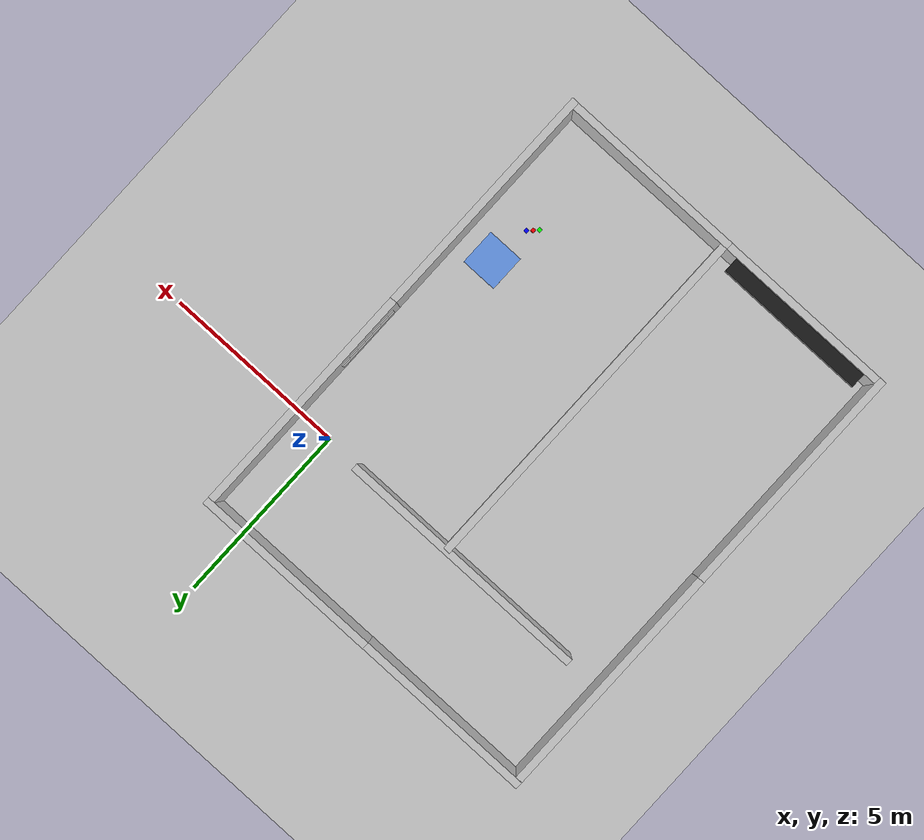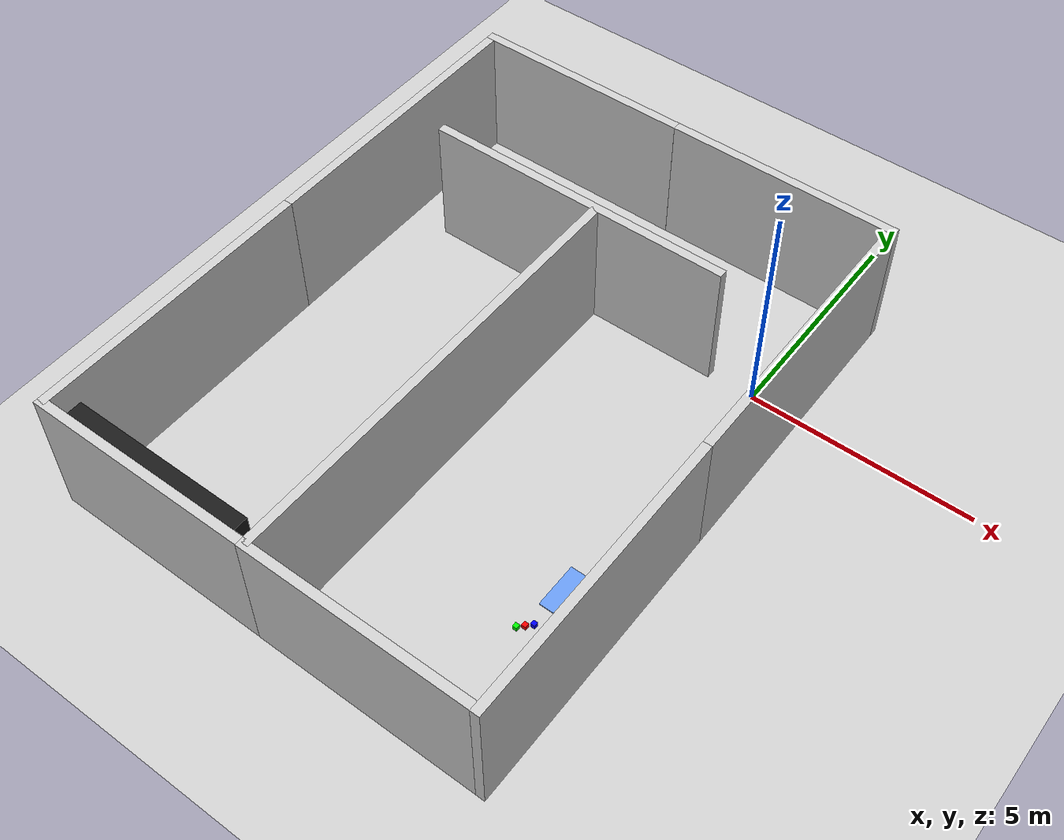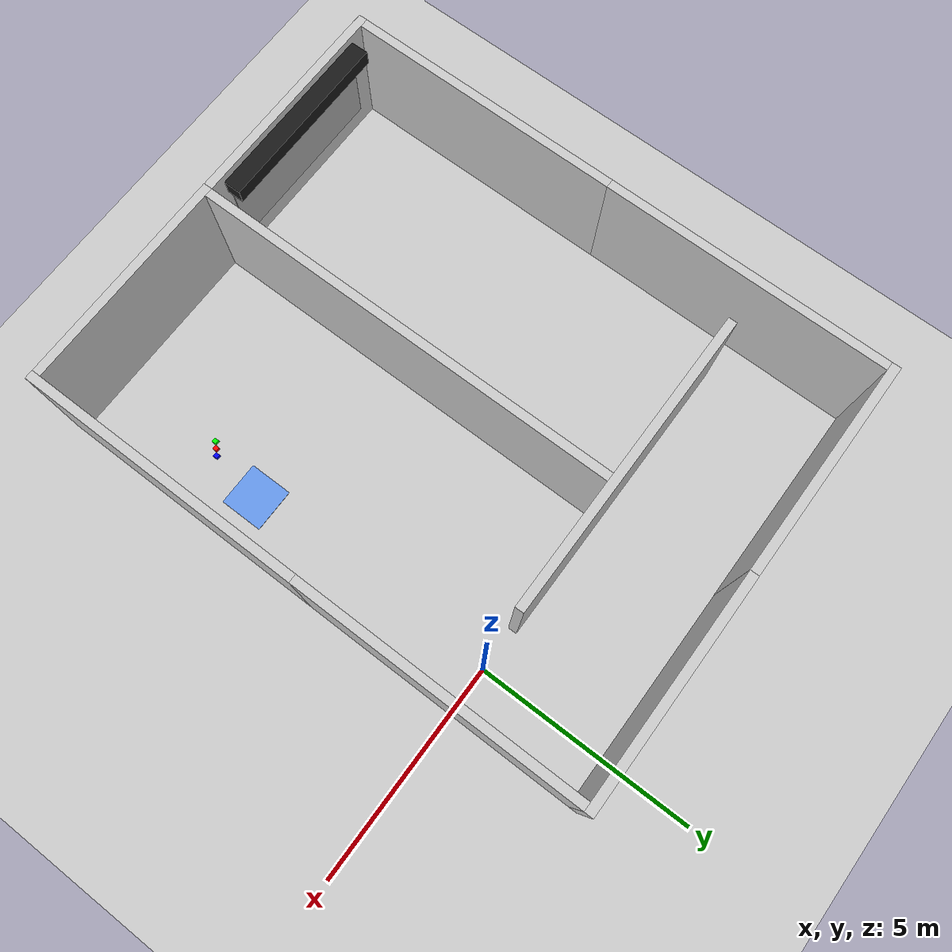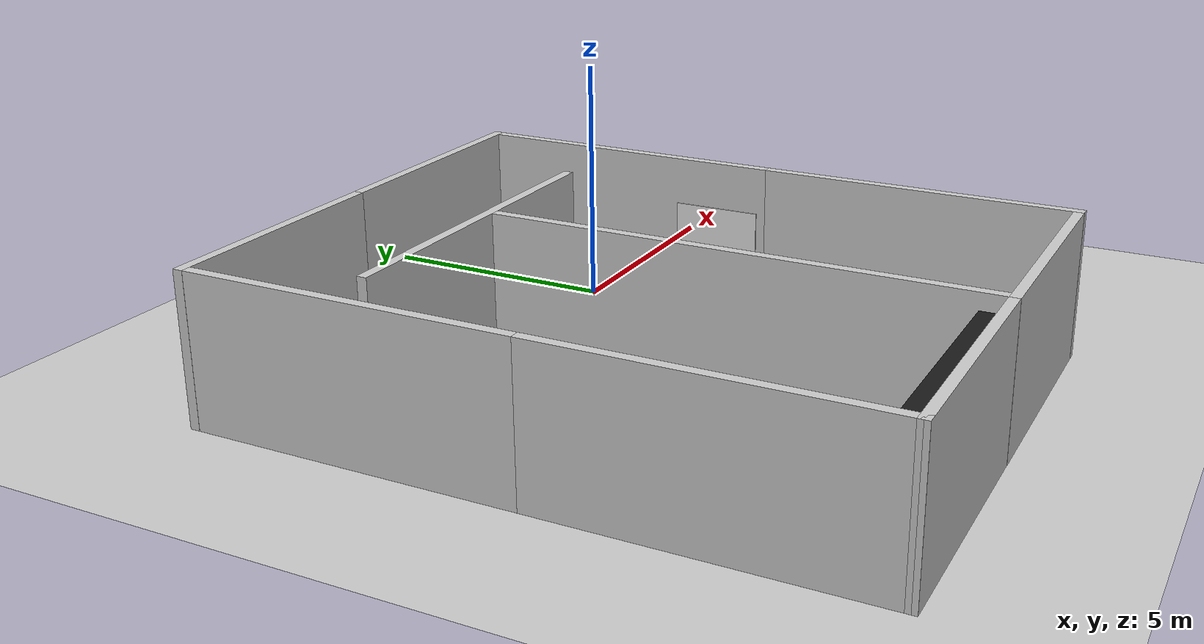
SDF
<sdf version="1.8">
 <world name="social_cost_map_world">
  <physics name="1ms" type="ignored">
   <max_step_size>0.001</max_step_size>
   <real_time_factor>1.0</real_time_factor>
  </physics>
  <scene>
   <ambient>1 1 1 1</ambient>
   <background>0.3 0.7 0.9 1</background>
   <shadows>0</shadows>
   <grid>1</grid>
  </scene>
  <light type="directional" name="sun">
   <cast_shadows>false</cast_shadows>
   <pose>0 0 10 0 0 0</pose>
   <diffuse>0.8 0.8 0.8 1</diffuse>
   <specular>0.2 0.2 0.2 1</specular>
   <attenuation>
    <range>1000</range>
    <constant>0.9</constant>
    <linear>0.01</linear>
    <quadratic>0.001</quadratic>
   </attenuation>
   <direction>-0.5 0.1 -0.9</direction>
  </light>
  <model name="ground_plane">
   <static>true</static>
   <link name="link">
    <collision name="collision">
     <geometry><plane><normal>0 0 1</normal><size>100 100</size></plane></geometry>
     <surface><friction><ode><mu>100</mu><mu2>50</mu2></ode></friction></surface>
    </collision>
    <visual name="visual">
     <cast_shadows>false</cast_shadows>
     <geometry><plane><normal>0 0 1</normal><size>100 100</size></plane></geometry>
     <material>
      <ambient>0.8 0.8 0.8 1</ambient>
      <diffuse>0.8 0.8 0.8 1</diffuse>
      <specular>0.8 0.8 0.8 1</specular>
     </material>
    </visual>
   </link>
  </model>
  <model name="Wall_Top1">
   <link name="link">
    <visual name="visual">
     <geometry><box><size>0.2 6.5 3</size></box></geometry>
     <material>
      <pbr><metal><albedo_map>model://materials/bricks.png</albedo_map><roughness>0.9</roughness></metal></pbr>
      <ambient>0.8 0.8 0.8 1</ambient>
      <diffuse>0.8 0.8 0.8 1</diffuse>
      <specular>0.8 0.8 0.8 1</specular>
     </material>
    </visual>
    <collision name="collision"><geometry><box><size>0.2 6.5 3</size></box></geometry></collision>
   </link>
   <static>1</static>
   <pose>1 -0.35 1.5 0 -0 0</pose>
  </model>
  <model name="Wall_Top2">
   <link name="link">
    <visual name="visual">
     <geometry><box><size>0.2 6.5 3</size></box></geometry>
     <material>
      <pbr><metal><albedo_map>model://materials/bricks.png</albedo_map><roughness>0.9</roughness></metal></pbr>
      <ambient>0.8 0.8 0.8 1</ambient>
      <diffuse>0.8 0.8 0.8 1</diffuse>
      <specular>0.8 0.8 0.8 1</specular>
     </material>
    </visual>
    <collision name="collision"><geometry><box><size>0.2 6.5 3</size></box></geometry></collision>
   </link>
   <static>1</static>
   <pose>1 -6.85 1.5 0 -0 0</pose>
  </model>
  <model name="Wall_Bottom1">
   <link name="link">
    <visual name="visual">
     <geometry><box><size>0.2 6.5 3</size></box></geometry>
     <material>
      <pbr><metal><albedo_map>model://materials/bricks.png</albedo_map><roughness>0.9</roughness></metal></pbr>
      <ambient>0.8 0.8 0.8 1</ambient>
      <diffuse>0.8 0.8 0.8 1</diffuse>
      <specular>0.8 0.8 0.8 1</specular>
     </material>
    </visual>
    <collision name="collision"><geometry><box><size>0.2 6.5 3</size></box></geometry></collision>
   </link>
   <static>1</static>
   <pose>-9 -0.35 1.5 0 -0 0</pose>
  </model>
  <model name="Wall_Bottom2">
   <link name="link">
    <visual name="visual">
     <geometry><box><size>0.2 6.5 3</size></box></geometry>
     <material>
      <pbr><metal><albedo_map>model://materials/bricks.png</albedo_map><roughness>0.9</roughness></metal></pbr>
      <ambient>0.8 0.8 0.8 1</ambient>
      <diffuse>0.8 0.8 0.8 1</diffuse>
      <specular>0.8 0.8 0.8 1</specular>
     </material>
    </visual>
    <collision name="collision"><geometry><box><size>0.2 6.5 3</size></box></geometry></collision>
   </link>
   <static>1</static>
   <pose>-9 -6.85 1.5 0 -0 0</pose>
  </model>
  <model name="Wall_Left1">
   <link name="link">
    <visual name="visual">
     <geometry><box><size>0.2 5.2 3</size></box></geometry>
     <material>
      <pbr><metal><albedo_map>model://materials/bricks.png</albedo_map><roughness>0.9</roughness></metal></pbr>
      <ambient>0.8 0.8 0.8 1</ambient>
      <diffuse>0.8 0.8 0.8 1</diffuse>
      <specular>0.8 0.8 0.8 1</specular>
     </material>
    </visual>
    <collision name="collision"><geometry><box><size>0.2 5 3</size></box></geometry></collision>
   </link>
   <static>1</static>
   <pose>-1.5 3 1.5 0 -0 1.57</pose>
  </model>
  <model name="Wall_Left2">
   <link name="link">
    <visual name="visual">
     <geometry><box><size>0.2 5 3</size></box></geometry>
     <material>
      <pbr><metal><albedo_map>model://materials/bricks.png</albedo_map><roughness>0.9</roughness></metal></pbr>
      <ambient>0.8 0.8 0.8 1</ambient>
      <diffuse>0.8 0.8 0.8 1</diffuse>
      <specular>0.8 0.8 0.8 1</specular>
     </material>
    </visual>
    <collision name="collision"><geometry><box><size>0.2 5 3</size></box></geometry></collision>
   </link>
   <static>1</static>
   <pose>-6.6 3 1.5 0 -0 1.57</pose>
  </model>
  <model name="Wall_Right1">
   <link name="link">
    <visual name="visual">
     <geometry><box><size>0.2 5 3</size></box></geometry>
     <material>
      <diffuse>0.8 0.8 0.8 1</diffuse>
      <specular>0.8 0.8 0.8 1</specular>
      <pbr><metal><albedo_map>model://materials/bricks.png</albedo_map><roughness>0.9</roughness></metal></pbr>
     </material>
    </visual>
    <collision name="collision"><geometry><box><size>0.2 5 3</size></box></geometry></collision>
   </link>
   <static>1</static>
   <pose>-1.6 -10 1.5 0 -0 -1.57</pose>
  </model>
  <model name="Wall_Right2">
   <link name="link">
    <visual name="visual">
     <geometry><box><size>0.2 5 3</size></box></geometry>
     <material>
      <diffuse>0.8 0.8 0.8 1</diffuse>
      <specular>0.8 0.8 0.8 1</specular>
      <pbr><metal><albedo_map>model://materials/bricks.png</albedo_map><roughness>0.9</roughness></metal></pbr>
     </material>
    </visual>
    <collision name="collision"><geometry><box><size>0.2 5 3</size></box></geometry></collision>
   </link>
   <static>1</static>
   <pose>-6.6 -10 1.5 0 -0 -1.57</pose>
  </model>
  <model name="Wall_Garage_1">
   <link name="link">
    <visual name="visual">
     <geometry><box><size>0.2 10 3</size></box></geometry>
     <material>
      <pbr><metal><albedo_map>model://materials/bricks.png</albedo_map><roughness>0.9</roughness></metal></pbr>
      <ambient>0.8 0.8 0.8 1</ambient>
      <diffuse>0.8 0.8 0.8 1</diffuse>
      <specular>0.8 0.8 0.8 1</specular>
     </material>
    </visual>
    <collision name="collision"><geometry><box><size>0.2 10 3</size></box></geometry></collision>
   </link>
   <static>1</static>
   <pose>-4 -5 1.5 0 -0 0</pose>
  </model>
  <model name="Wall_Garage_Left">
   <link name="link">
    <visual name="visual">
     <geometry><box><size>0.2 7 3</size></box></geometry>
     <material>
      <pbr><metal><albedo_map>model://materials/bricks.png</albedo_map><roughness>0.9</roughness></metal></pbr>
      <ambient>0.8 0.8 0.8 1</ambient>
      <diffuse>0.8 0.8 0.8 1</diffuse>
      <specular>0.8 0.8 0.8 1</specular>
     </material>
    </visual>
    <collision name="collision"><geometry><box><size>0.2 7 3</size></box></geometry></collision>
   </link>
   <static>1</static>
   <pose>-4.5 0 1.5 0 -0 -1.57</pose>
  </model>
  <include><uri>model://garage_door</uri><name>Garage_Door</name><pose>-6.5 -9.9 1.5 0 0 1.57</pose></include>
  <include>
   <uri>model://tv_65in_emissive</uri>
   <name>tv_65in_emissive</name>
   <pose>0.9 -2.5 1.5 0 0 0</pose>
  </include>
  <include><uri>model://landing_sign</uri><name>landing_sign</name><pose>0 -6 -0.02 0 0 0</pose></include>
  <model name="CubeR">
   <link name="link">
    <visual name="visual">
     <geometry><box><size>0.1 0.1 0.1</size></box></geometry>
     <material>
      <ambient>0.8 0.8 0.8 1</ambient>
      <diffuse>1 0 0 1</diffuse>
      <specular>0.8 0.8 0.8 1</specular>
     </material>
    </visual>
    <collision name="collision"><geometry><box><size>0.1 0.1 0.1</size></box></geometry></collision>
   </link>
   <static>1</static>
   <pose>-0.265 -7.215 0.425 0 0 0</pose>
  </model>
  <model name="CubeG">
   <link name="link">
    <visual name="visual">
     <geometry><box><size>0.1 0.1 0.1</size></box></geometry>
     <material>
      <ambient>0.8 0.8 0.8 1</ambient>
      <diffuse>0 1 0 1</diffuse>
      <specular>0.8 0.8 0.8 1</specular>
     </material>
    </visual>
    <collision name="collision"><geometry><box><size>0.1 0.1 0.1</size></box></geometry></collision>
   </link>
   <static>1</static>
   <pose>-0.38 -7.33 0.425 0 0 0</pose>
  </model>
  <model name="CubeB">
   <link name="link">
    <visual name="visual">
     <geometry><box><size>0.1 0.1 0.1</size></box></geometry>
     <material>
      <ambient>0.8 0.8 0.8 1</ambient>
      <diffuse>0 0 1 1</diffuse>
      <specular>0.8 0.8 0.8 1</specular>
     </material>
    </visual>
    <collision name="collision"><geometry><box><size>0.1 0.1 0.1</size></box></geometry></collision>
   </link>
   <static>1</static>
   <pose>-0.15 -7.1 0.425 0 0 0</pose>
  </model>
  <model name="Tifoso_Accanito_Fisico">
   <pose>-0.4 -2.6 0 0 0 0</pose>
   <static>false</static>
   <link name="link">
    <collision name="collision">
     <geometry><cylinder><radius>0.3</radius><length>1.8</length></cylinder></geometry>
    </collision>
   </link>
  </model>
  <gazebo>
   <plugin filename="gz-sim-sensors-system" name="gz::sim::systems::Sensors">
    <render_engine>ogre2</render_engine>
   </plugin>
  </gazebo>
 </world>
</sdf>

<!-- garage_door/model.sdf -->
<sdf version='1.6'>
  <model name='garage_door'>
    <link name='link'>
      <self_collide>0</self_collide>
      <enable_wind>0</enable_wind>
      <kinematic>0</kinematic>
      <pose frame=''>0 0 0 0 -0 0</pose>
      <visual name='visual'>
        <geometry>
          <box>
            <size>0.05 4 2</size>
          </box>
        </geometry>
        <material>
          <pbr>
            <metal>
              <albedo_map>model://garage_door/material/textures/BrushedMetal.jpg</albedo_map>
            </metal>
          </pbr>
          <ambient>0.5 0.5 0.5 1</ambient>
          <diffuse>0.7 0.7 0.7 1</diffuse>
          <specular>0.8 0.8 0.8 1</specular>
        </material>
        <pose frame=''>0 0 0 0 -0 0</pose>
        <transparency>0</transparency>
        <cast_shadows>1</cast_shadows>
      </visual>
    </link>
    <link name='link_0'>
      <inertial>
        <mass>0.631708</mass>
        <inertia>
          <ixx>0.913425</ixx>
          <ixy>0</ixy>
          <ixz>0</ixz>
          <iyy>0.0161823</iyy>
          <iyz>0</iyz>
          <izz>0.915671</izz>
        </inertia>
        <pose frame=''>0 0 0 0 -0 0</pose>
      </inertial>
      <pose frame=''>0.186516 0.0 1.12272 0 -0 0</pose>
      <visual name='visual'>
        <pose frame=''>0 0 0 0 -0 0</pose>
        <geometry>
          <box>
            <size>0.418365 4.1496 0.363828</size>
          </box>
        </geometry>
        <material>
          <ambient>0.5 0.5 0.5 1</ambient>
          <diffuse>0.1 0.1 0.1 1</diffuse>
          <specular>0.8 0.8 0.8 1</specular>
        </material>
        <transparency>0</transparency>
        <cast_shadows>1</cast_shadows>
      </visual>
      <collision name='collision'>
        <laser_retro>0</laser_retro>
        <max_contacts>10</max_contacts>
        <pose frame=''>0 0 0 0 -0 0</pose>
        <geometry>
          <box>
            <size>0.418365 4.15 0.363828</size>
          </box>
        </geometry>
        <surface>
          <friction>
            <ode>
              <mu>1</mu>
              <mu2>1</mu2>
              <fdir1>0 0 0</fdir1>
              <slip1>0</slip1>
              <slip2>0</slip2>
            </ode>
            <torsional>
              <coefficient>1</coefficient>
              <patch_radius>0</patch_radius>
              <surface_radius>0</surface_radius>
              <use_patch_radius>1</use_patch_radius>
              <ode>
                <slip>0</slip>
              </ode>
            </torsional>
          </friction>
          <bounce>
            <restitution_coefficient>0</restitution_coefficient>
            <threshold>1e+06</threshold>
          </bounce>
          <contact>
            <collide_without_contact>0</collide_without_contact>
            <collide_without_contact_bitmask>1</collide_without_contact_bitmask>
            <collide_bitmask>1</collide_bitmask>
            <ode>
              <soft_cfm>0</soft_cfm>
              <soft_erp>0.2</soft_erp>
              <kp>1e+13</kp>
              <kd>1</kd>
              <max_vel>0.01</max_vel>
              <min_depth>0</min_depth>
            </ode>
            <bullet>
              <split_impulse>1</split_impulse>
              <split_impulse_penetration_threshold>-0.01</split_impulse_penetration_threshold>
              <soft_cfm>0</soft_cfm>
              <soft_erp>0.2</soft_erp>
              <kp>1e+13</kp>
              <kd>1</kd>
            </bullet>
          </contact>
        </surface>
      </collision>
    </link>
    <static>1</static>
    <allow_auto_disable>1</allow_auto_disable>
  </model>
</sdf>

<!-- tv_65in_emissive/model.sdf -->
<sdf version='1.4'>
  <model name='tv_65in_emissive'>
    <link name="link">
      <visual name="visual">
        <geometry>
          <box>
            <size>0.05 1.827 1.046</size>
          </box>
        </geometry>
        <material>
          <pbr>
            <metal>
              <albedo_map>model://tv_65in_emissive/material/textures/Napoli.jpeg</albedo_map>
            </metal>
          </pbr>
          <ambient>0.9 0.9 0.9 1</ambient>
          <diffuse>0.9 0.9 0.9 1</diffuse>
          <specular>0.8 0.8 0.8 1</specular>
        </material>
      </visual>
    </link>
    <static>1</static>
    <allow_auto_disable>1</allow_auto_disable>
  </model>
</sdf>

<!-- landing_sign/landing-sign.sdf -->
<sdf version="1.9">
  <model name="landing-sign">
    <static>true</static>
    <pose>0 0 0 0 0 0</pose>
    <link name="link">
      <collision name="collision">
        <geometry>
          <box>
            <size>1 1 0.03</size>
          </box>
        </geometry>
      </collision>
      <visual name="visual">
        <geometry>
          <box>
            <size>1 1 0.05</size>
          </box>
        </geometry>
        <material>
          <ambient>0.8 0.8 0.8 1</ambient>
          <diffuse>0.4 0.6 0.93 1</diffuse>
          <specular>0.8 0.8 0.8 1</specular>
          <emissive>0 0 0 1</emissive>
          <pbr>
            <metal>
              <albedo_map>model://landing_sign/landing.png</albedo_map>
              <normal_map>model://landing_sign/landing.png</normal_map>
            </metal>
          </pbr>
        </material>
      </visual>
    </link>
  </model>
</sdf>
